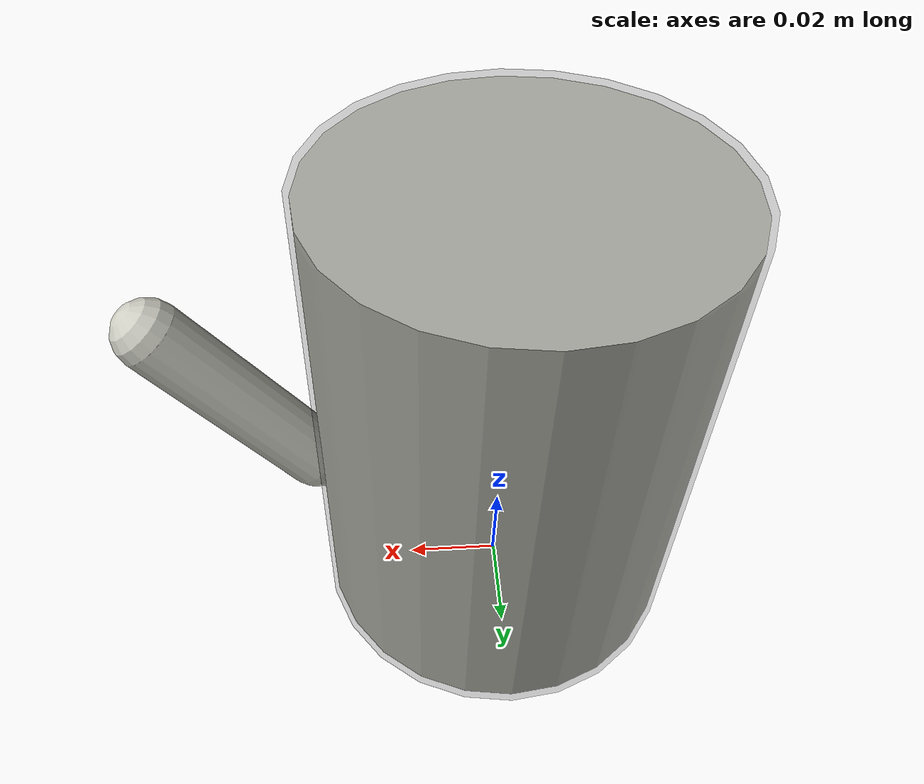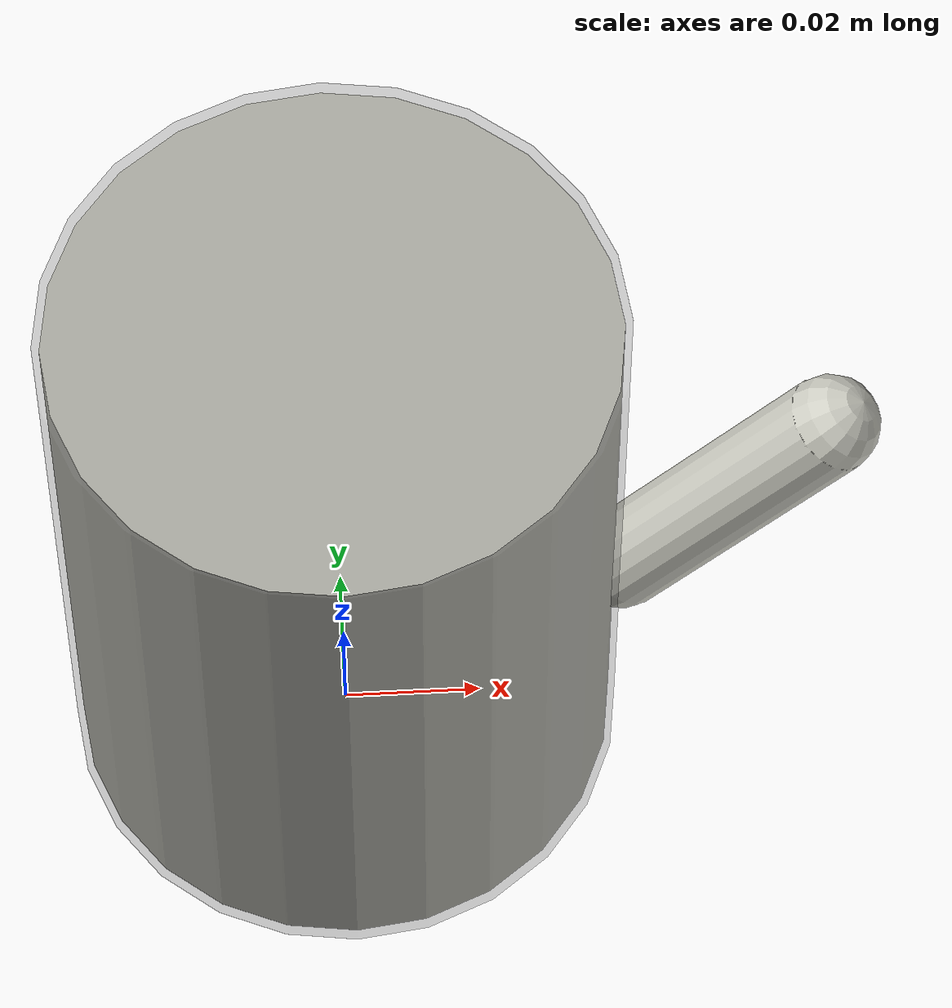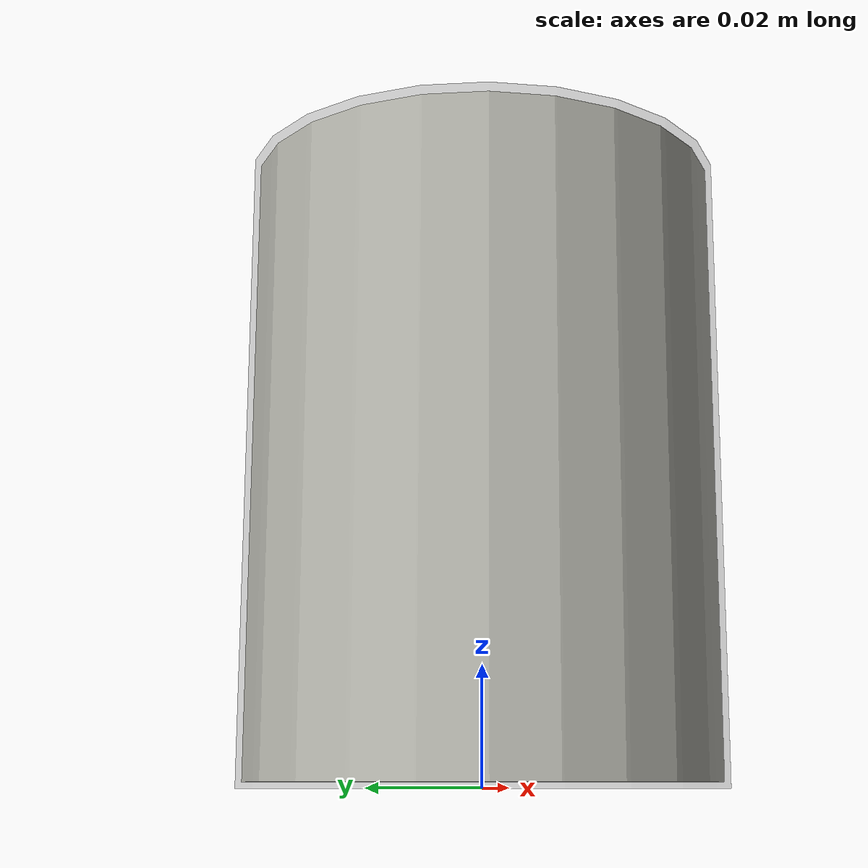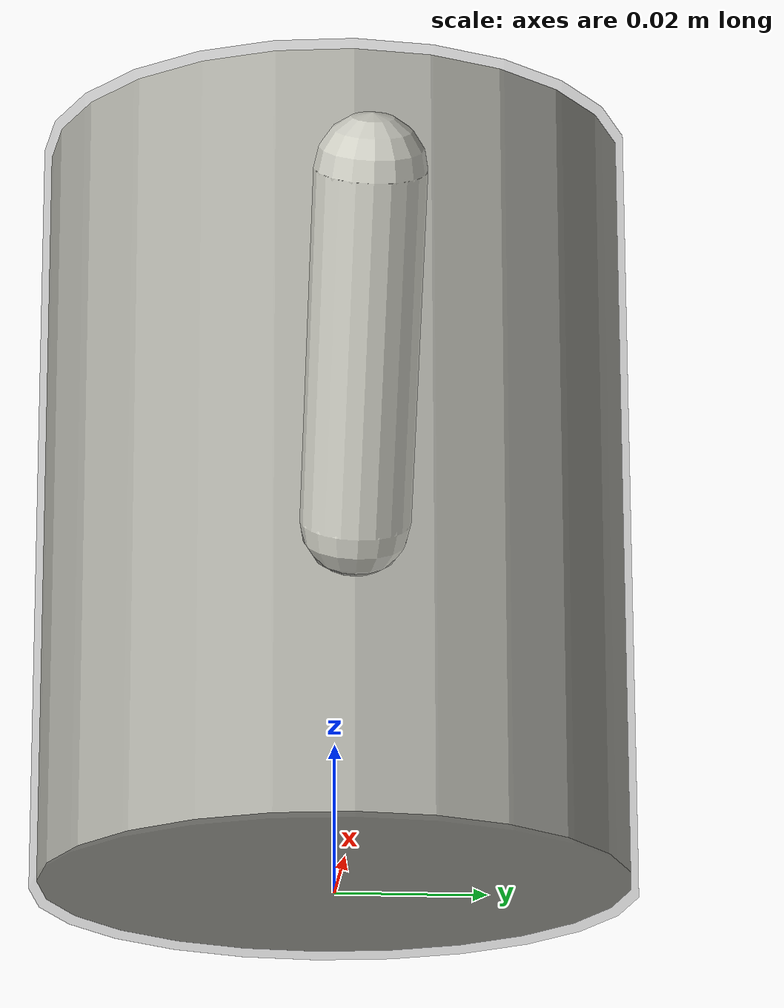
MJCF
<mujoco model="mug">
  <compiler autolimits="true"/>
  <default>
    <geom friction="0.9 0.01 0.001" condim="3" solref="0.008 1" solimp="0.90 0.95 0.001" margin="0.001"/>
  </default>
  <worldbody>
    <body name="mug" pos="0 0 0.052">
      <freejoint/>
      <inertial pos="0 0 0" mass="0.14" diaginertia="0.00015 0.00015 0.000084"/>
      <geom name="mug_collision" type="cylinder" size="0.040 0.052" rgba="0.25 0.25 0.25 0.25"/>
      <geom name="mug_visual" type="cylinder" size="0.039 0.051" contype="0" conaffinity="0" group="1" rgba="0.80 0.80 0.76 0.94"/>
      <geom name="mug_handle_visual" type="capsule" fromto="0.040 0 -0.014 0.068 0 0.022" size="0.007" contype="0" conaffinity="0" group="1" rgba="0.80 0.80 0.76 0.94"/>
    </body>
  </worldbody>
</mujoco>
